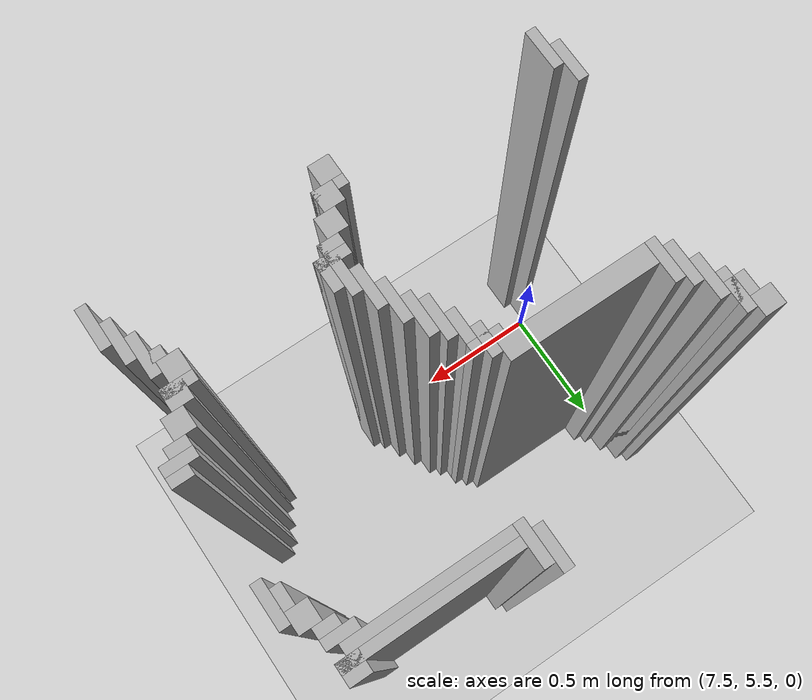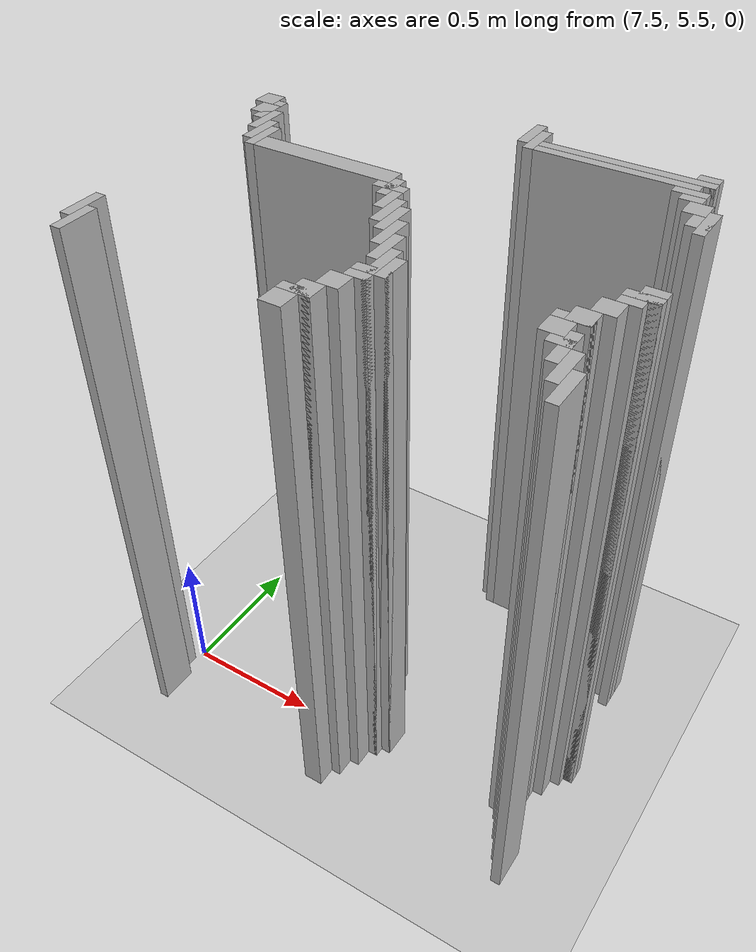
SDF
<sdf version="1.6">
 <world name="slam_world">
  <model name="ground_plane">
   <static>true</static>
   <link name="link">
    <collision name="collision">
     <geometry><plane><normal>0 0 1</normal><size>100 100</size></plane></geometry>
    </collision>
    <visual name="visual">
     <geometry><plane><normal>0 0 1</normal><size>100 100</size></plane></geometry>
     <material>
      <ambient>0.8 0.8 0.8 1</ambient>
      <diffuse>0.8 0.8 0.8 1</diffuse>
      <specular>0.8 0.8 0.8 1</specular>
     </material>
    </visual>
   </link>
  </model>
  <model name="wall_3631">
   <static>true</static>
   <pose>8.30046403712297 6.473317865429234 1.0 0 0 0</pose>
   <link name="link">
    <collision name="collision">
     <geometry><box><size>0.03480278422273782 0.13921113689095127 2.0</size></box></geometry>
    </collision>
    <visual name="visual">
     <geometry><box><size>0.03480278422273782 0.13921113689095127 2.0</size></box></geometry>
     <material><ambient>0.5 0.5 0.5 1</ambient><diffuse>0.7 0.7 0.7 1</diffuse></material>
    </visual>
   </link>
  </model>
  <model name="wall_3644">
   <static>true</static>
   <pose>8.335266821345707 6.438515081206496 1.0 0 0 0</pose>
   <link name="link">
    <collision name="collision">
     <geometry><box><size>0.03480278422273782 0.13921113689095127 2.0</size></box></geometry>
    </collision>
    <visual name="visual">
     <geometry><box><size>0.03480278422273782 0.13921113689095127 2.0</size></box></geometry>
     <material><ambient>0.5 0.5 0.5 1</ambient><diffuse>0.7 0.7 0.7 1</diffuse></material>
    </visual>
   </link>
  </model>
  <model name="wall_3654">
   <static>true</static>
   <pose>8.874709976798144 6.438515081206496 1.0 0 0 0</pose>
   <link name="link">
    <collision name="collision">
     <geometry><box><size>0.06960556844547564 0.06960556844547564 2.0</size></box></geometry>
    </collision>
    <visual name="visual">
     <geometry><box><size>0.06960556844547564 0.06960556844547564 2.0</size></box></geometry>
     <material><ambient>0.5 0.5 0.5 1</ambient><diffuse>0.7 0.7 0.7 1</diffuse></material>
    </visual>
   </link>
  </model>
  <model name="wall_3666">
   <static>true</static>
   <pose>8.631090487238978 6.421113689095128 1.0 0 0 0</pose>
   <link name="link">
    <collision name="collision">
     <geometry><box><size>0.5568445475638051 0.03480278422273782 2.0</size></box></geometry>
    </collision>
    <visual name="visual">
     <geometry><box><size>0.5568445475638051 0.03480278422273782 2.0</size></box></geometry>
     <material><ambient>0.5 0.5 0.5 1</ambient><diffuse>0.7 0.7 0.7 1</diffuse></material>
    </visual>
   </link>
  </model>
  <model name="wall_3674">
   <static>true</static>
   <pose>8.61368909512761 6.386310904872389 1.0 0 0 0</pose>
   <link name="link">
    <collision name="collision">
     <geometry><box><size>0.5220417633410672 0.03480278422273782 2.0</size></box></geometry>
    </collision>
    <visual name="visual">
     <geometry><box><size>0.5220417633410672 0.03480278422273782 2.0</size></box></geometry>
     <material><ambient>0.5 0.5 0.5 1</ambient><diffuse>0.7 0.7 0.7 1</diffuse></material>
    </visual>
   </link>
  </model>
  <model name="wall_3686">
   <static>true</static>
   <pose>8.857308584686775 6.351508120649652 1.0 0 0 0</pose>
   <link name="link">
    <collision name="collision">
     <geometry><box><size>0.10440835266821345 0.03480278422273782 2.0</size></box></geometry>
    </collision>
    <visual name="visual">
     <geometry><box><size>0.10440835266821345 0.03480278422273782 2.0</size></box></geometry>
     <material><ambient>0.5 0.5 0.5 1</ambient><diffuse>0.7 0.7 0.7 1</diffuse></material>
    </visual>
   </link>
  </model>
  <model name="wall_3696">
   <static>true</static>
   <pose>8.874709976798144 6.316705336426914 1.0 0 0 0</pose>
   <link name="link">
    <collision name="collision">
     <geometry><box><size>0.06960556844547564 0.03480278422273782 2.0</size></box></geometry>
    </collision>
    <visual name="visual">
     <geometry><box><size>0.06960556844547564 0.03480278422273782 2.0</size></box></geometry>
     <material><ambient>0.5 0.5 0.5 1</ambient><diffuse>0.7 0.7 0.7 1</diffuse></material>
    </visual>
   </link>
  </model>
  <model name="wall_3708">
   <static>true</static>
   <pose>7.447795823665893 6.2645011600928076 1.0 0 0 0</pose>
   <link name="link">
    <collision name="collision">
     <geometry><box><size>0.06960556844547564 0.06960556844547564 2.0</size></box></geometry>
    </collision>
    <visual name="visual">
     <geometry><box><size>0.06960556844547564 0.06960556844547564 2.0</size></box></geometry>
     <material><ambient>0.5 0.5 0.5 1</ambient><diffuse>0.7 0.7 0.7 1</diffuse></material>
    </visual>
   </link>
  </model>
  <model name="wall_3709">
   <static>true</static>
   <pose>8.909512761020881 6.2645011600928076 1.0 0 0 0</pose>
   <link name="link">
    <collision name="collision">
     <geometry><box><size>0.06960556844547564 0.06960556844547564 2.0</size></box></geometry>
    </collision>
    <visual name="visual">
     <geometry><box><size>0.06960556844547564 0.06960556844547564 2.0</size></box></geometry>
     <material><ambient>0.5 0.5 0.5 1</ambient><diffuse>0.7 0.7 0.7 1</diffuse></material>
    </visual>
   </link>
  </model>
  <model name="wall_3721">
   <static>true</static>
   <pose>7.5 6.194895591647332 1.0 0 0 0</pose>
   <link name="link">
    <collision name="collision">
     <geometry><box><size>0.03480278422273782 0.13921113689095127 2.0</size></box></geometry>
    </collision>
    <visual name="visual">
     <geometry><box><size>0.03480278422273782 0.13921113689095127 2.0</size></box></geometry>
     <material><ambient>0.5 0.5 0.5 1</ambient><diffuse>0.7 0.7 0.7 1</diffuse></material>
    </visual>
   </link>
  </model>
  <model name="wall_3722">
   <static>true</static>
   <pose>8.961716937354987 6.194895591647332 1.0 0 0 0</pose>
   <link name="link">
    <collision name="collision">
     <geometry><box><size>0.03480278422273782 0.13921113689095127 2.0</size></box></geometry>
    </collision>
    <visual name="visual">
     <geometry><box><size>0.03480278422273782 0.13921113689095127 2.0</size></box></geometry>
     <material><ambient>0.5 0.5 0.5 1</ambient><diffuse>0.7 0.7 0.7 1</diffuse></material>
    </visual>
   </link>
  </model>
  <model name="wall_3734">
   <static>true</static>
   <pose>7.48259860788863 6.194895591647332 1.0 0 0 0</pose>
   <link name="link">
    <collision name="collision">
     <geometry><box><size>0.06960556844547564 0.06960556844547564 2.0</size></box></geometry>
    </collision>
    <visual name="visual">
     <geometry><box><size>0.06960556844547564 0.06960556844547564 2.0</size></box></geometry>
     <material><ambient>0.5 0.5 0.5 1</ambient><diffuse>0.7 0.7 0.7 1</diffuse></material>
    </visual>
   </link>
  </model>
  <model name="wall_3735">
   <static>true</static>
   <pose>8.944315545243619 6.194895591647332 1.0 0 0 0</pose>
   <link name="link">
    <collision name="collision">
     <geometry><box><size>0.06960556844547564 0.06960556844547564 2.0</size></box></geometry>
    </collision>
    <visual name="visual">
     <geometry><box><size>0.06960556844547564 0.06960556844547564 2.0</size></box></geometry>
     <material><ambient>0.5 0.5 0.5 1</ambient><diffuse>0.7 0.7 0.7 1</diffuse></material>
    </visual>
   </link>
  </model>
  <model name="wall_3747">
   <static>true</static>
   <pose>7.534802784222737 6.125290023201856 1.0 0 0 0</pose>
   <link name="link">
    <collision name="collision">
     <geometry><box><size>0.03480278422273782 0.13921113689095127 2.0</size></box></geometry>
    </collision>
    <visual name="visual">
     <geometry><box><size>0.03480278422273782 0.13921113689095127 2.0</size></box></geometry>
     <material><ambient>0.5 0.5 0.5 1</ambient><diffuse>0.7 0.7 0.7 1</diffuse></material>
    </visual>
   </link>
  </model>
  <model name="wall_3764">
   <static>true</static>
   <pose>7.569605568445476 6.05568445475638 1.0 0 0 0</pose>
   <link name="link">
    <collision name="collision">
     <geometry><box><size>0.03480278422273782 0.13921113689095127 2.0</size></box></geometry>
    </collision>
    <visual name="visual">
     <geometry><box><size>0.03480278422273782 0.13921113689095127 2.0</size></box></geometry>
     <material><ambient>0.5 0.5 0.5 1</ambient><diffuse>0.7 0.7 0.7 1</diffuse></material>
    </visual>
   </link>
  </model>
  <model name="wall_3777">
   <static>true</static>
   <pose>7.604408352668213 6.020881670533642 1.0 0 0 0</pose>
   <link name="link">
    <collision name="collision">
     <geometry><box><size>0.03480278422273782 0.13921113689095127 2.0</size></box></geometry>
    </collision>
    <visual name="visual">
     <geometry><box><size>0.03480278422273782 0.13921113689095127 2.0</size></box></geometry>
     <material><ambient>0.5 0.5 0.5 1</ambient><diffuse>0.7 0.7 0.7 1</diffuse></material>
    </visual>
   </link>
  </model>
  <model name="wall_3793">
   <static>true</static>
   <pose>7.865429234338746 5.986078886310905 1.0 0 0 0</pose>
   <link name="link">
    <collision name="collision">
     <geometry><box><size>0.4872389791183295 0.06960556844547564 2.0</size></box></geometry>
    </collision>
    <visual name="visual">
     <geometry><box><size>0.4872389791183295 0.06960556844547564 2.0</size></box></geometry>
     <material><ambient>0.5 0.5 0.5 1</ambient><diffuse>0.7 0.7 0.7 1</diffuse></material>
    </visual>
   </link>
  </model>
  <model name="wall_3804">
   <static>true</static>
   <pose>8.12645011600928 5.933874709976798 1.0 0 0 0</pose>
   <link name="link">
    <collision name="collision">
     <geometry><box><size>0.03480278422273782 0.10440835266821345 2.0</size></box></geometry>
    </collision>
    <visual name="visual">
     <geometry><box><size>0.03480278422273782 0.10440835266821345 2.0</size></box></geometry>
     <material><ambient>0.5 0.5 0.5 1</ambient><diffuse>0.7 0.7 0.7 1</diffuse></material>
    </visual>
   </link>
  </model>
  <model name="wall_3817">
   <static>true</static>
   <pose>8.12645011600928 5.933874709976798 1.0 0 0 0</pose>
   <link name="link">
    <collision name="collision">
     <geometry><box><size>0.10440835266821345 0.03480278422273782 2.0</size></box></geometry>
    </collision>
    <visual name="visual">
     <geometry><box><size>0.10440835266821345 0.03480278422273782 2.0</size></box></geometry>
     <material><ambient>0.5 0.5 0.5 1</ambient><diffuse>0.7 0.7 0.7 1</diffuse></material>
    </visual>
   </link>
  </model>
  <model name="wall_3831">
   <static>true</static>
   <pose>8.161252900232018 5.864269141531322 1.0 0 0 0</pose>
   <link name="link">
    <collision name="collision">
     <geometry><box><size>0.03480278422273782 0.10440835266821345 2.0</size></box></geometry>
    </collision>
    <visual name="visual">
     <geometry><box><size>0.03480278422273782 0.10440835266821345 2.0</size></box></geometry>
     <material><ambient>0.5 0.5 0.5 1</ambient><diffuse>0.7 0.7 0.7 1</diffuse></material>
    </visual>
   </link>
  </model>
  <model name="wall_3846">
   <static>true</static>
   <pose>8.196055684454755 5.812064965197216 1.0 0 0 0</pose>
   <link name="link">
    <collision name="collision">
     <geometry><box><size>0.03480278422273782 0.13921113689095127 2.0</size></box></geometry>
    </collision>
    <visual name="visual">
     <geometry><box><size>0.03480278422273782 0.13921113689095127 2.0</size></box></geometry>
     <material><ambient>0.5 0.5 0.5 1</ambient><diffuse>0.7 0.7 0.7 1</diffuse></material>
    </visual>
   </link>
  </model>
  <model name="wall_3862">
   <static>true</static>
   <pose>8.230858468677495 5.7772621809744775 1.0 0 0 0</pose>
   <link name="link">
    <collision name="collision">
     <geometry><box><size>0.03480278422273782 0.13921113689095127 2.0</size></box></geometry>
    </collision>
    <visual name="visual">
     <geometry><box><size>0.03480278422273782 0.13921113689095127 2.0</size></box></geometry>
     <material><ambient>0.5 0.5 0.5 1</ambient><diffuse>0.7 0.7 0.7 1</diffuse></material>
    </visual>
   </link>
  </model>
  <model name="wall_3878">
   <static>true</static>
   <pose>8.979118329466356 5.7772621809744775 1.0 0 0 0</pose>
   <link name="link">
    <collision name="collision">
     <geometry><box><size>0.06960556844547564 0.06960556844547564 2.0</size></box></geometry>
    </collision>
    <visual name="visual">
     <geometry><box><size>0.06960556844547564 0.06960556844547564 2.0</size></box></geometry>
     <material><ambient>0.5 0.5 0.5 1</ambient><diffuse>0.7 0.7 0.7 1</diffuse></material>
    </visual>
   </link>
  </model>
  <model name="wall_3891">
   <static>true</static>
   <pose>8.265661252900232 5.707656612529002 1.0 0 0 0</pose>
   <link name="link">
    <collision name="collision">
     <geometry><box><size>0.03480278422273782 0.13921113689095127 2.0</size></box></geometry>
    </collision>
    <visual name="visual">
     <geometry><box><size>0.03480278422273782 0.13921113689095127 2.0</size></box></geometry>
     <material><ambient>0.5 0.5 0.5 1</ambient><diffuse>0.7 0.7 0.7 1</diffuse></material>
    </visual>
   </link>
  </model>
  <model name="wall_3892">
   <static>true</static>
   <pose>8.961716937354987 5.759860788863109 1.0 0 0 0</pose>
   <link name="link">
    <collision name="collision">
     <geometry><box><size>0.10440835266821345 0.03480278422273782 2.0</size></box></geometry>
    </collision>
    <visual name="visual">
     <geometry><box><size>0.10440835266821345 0.03480278422273782 2.0</size></box></geometry>
     <material><ambient>0.5 0.5 0.5 1</ambient><diffuse>0.7 0.7 0.7 1</diffuse></material>
    </visual>
   </link>
  </model>
  <model name="wall_3903">
   <static>true</static>
   <pose>8.944315545243619 5.725058004640371 1.0 0 0 0</pose>
   <link name="link">
    <collision name="collision">
     <geometry><box><size>0.06960556844547564 0.03480278422273782 2.0</size></box></geometry>
    </collision>
    <visual name="visual">
     <geometry><box><size>0.06960556844547564 0.03480278422273782 2.0</size></box></geometry>
     <material><ambient>0.5 0.5 0.5 1</ambient><diffuse>0.7 0.7 0.7 1</diffuse></material>
    </visual>
   </link>
  </model>
  <model name="wall_3915">
   <static>true</static>
   <pose>8.30046403712297 5.638051044083526 1.0 0 0 0</pose>
   <link name="link">
    <collision name="collision">
     <geometry><box><size>0.03480278422273782 0.13921113689095127 2.0</size></box></geometry>
    </collision>
    <visual name="visual">
     <geometry><box><size>0.03480278422273782 0.13921113689095127 2.0</size></box></geometry>
     <material><ambient>0.5 0.5 0.5 1</ambient><diffuse>0.7 0.7 0.7 1</diffuse></material>
    </visual>
   </link>
  </model>
  <model name="wall_3916">
   <static>true</static>
   <pose>8.909512761020881 5.672853828306264 1.0 0 0 0</pose>
   <link name="link">
    <collision name="collision">
     <geometry><box><size>0.06960556844547564 0.06960556844547564 2.0</size></box></geometry>
    </collision>
    <visual name="visual">
     <geometry><box><size>0.06960556844547564 0.06960556844547564 2.0</size></box></geometry>
     <material><ambient>0.5 0.5 0.5 1</ambient><diffuse>0.7 0.7 0.7 1</diffuse></material>
    </visual>
   </link>
  </model>
  <model name="wall_3931">
   <static>true</static>
   <pose>8.335266821345707 5.551044083526682 1.0 0 0 0</pose>
   <link name="link">
    <collision name="collision">
     <geometry><box><size>0.03480278422273782 0.17401392111368907 2.0</size></box></geometry>
    </collision>
    <visual name="visual">
     <geometry><box><size>0.03480278422273782 0.17401392111368907 2.0</size></box></geometry>
     <material><ambient>0.5 0.5 0.5 1</ambient><diffuse>0.7 0.7 0.7 1</diffuse></material>
    </visual>
   </link>
  </model>
  <model name="wall_3932">
   <static>true</static>
   <pose>8.874709976798144 5.603248259860789 1.0 0 0 0</pose>
   <link name="link">
    <collision name="collision">
     <geometry><box><size>0.06960556844547564 0.06960556844547564 2.0</size></box></geometry>
    </collision>
    <visual name="visual">
     <geometry><box><size>0.06960556844547564 0.06960556844547564 2.0</size></box></geometry>
     <material><ambient>0.5 0.5 0.5 1</ambient><diffuse>0.7 0.7 0.7 1</diffuse></material>
    </visual>
   </link>
  </model>
  <model name="wall_3947">
   <static>true</static>
   <pose>8.370069605568444 5.551044083526682 1.0 0 0 0</pose>
   <link name="link">
    <collision name="collision">
     <geometry><box><size>0.03480278422273782 0.10440835266821345 2.0</size></box></geometry>
    </collision>
    <visual name="visual">
     <geometry><box><size>0.03480278422273782 0.10440835266821345 2.0</size></box></geometry>
     <material><ambient>0.5 0.5 0.5 1</ambient><diffuse>0.7 0.7 0.7 1</diffuse></material>
    </visual>
   </link>
  </model>
  <model name="wall_3948">
   <static>true</static>
   <pose>8.857308584686775 5.58584686774942 1.0 0 0 0</pose>
   <link name="link">
    <collision name="collision">
     <geometry><box><size>0.10440835266821345 0.03480278422273782 2.0</size></box></geometry>
    </collision>
    <visual name="visual">
     <geometry><box><size>0.10440835266821345 0.03480278422273782 2.0</size></box></geometry>
     <material><ambient>0.5 0.5 0.5 1</ambient><diffuse>0.7 0.7 0.7 1</diffuse></material>
    </visual>
   </link>
  </model>
  <model name="wall_3962">
   <static>true</static>
   <pose>8.839907192575406 5.533642691415313 1.0 0 0 0</pose>
   <link name="link">
    <collision name="collision">
     <geometry><box><size>0.06960556844547564 0.06960556844547564 2.0</size></box></geometry>
    </collision>
    <visual name="visual">
     <geometry><box><size>0.06960556844547564 0.06960556844547564 2.0</size></box></geometry>
     <material><ambient>0.5 0.5 0.5 1</ambient><diffuse>0.7 0.7 0.7 1</diffuse></material>
    </visual>
   </link>
  </model>
  <model name="wall_3976">
   <static>true</static>
   <pose>8.335266821345707 5.516241299303944 1.0 0 0 0</pose>
   <link name="link">
    <collision name="collision">
     <geometry><box><size>0.10440835266821345 0.03480278422273782 2.0</size></box></geometry>
    </collision>
    <visual name="visual">
     <geometry><box><size>0.10440835266821345 0.03480278422273782 2.0</size></box></geometry>
     <material><ambient>0.5 0.5 0.5 1</ambient><diffuse>0.7 0.7 0.7 1</diffuse></material>
    </visual>
   </link>
  </model>
  <model name="wall_3977">
   <static>true</static>
   <pose>8.892111368909513 5.464037122969837 1.0 0 0 0</pose>
   <link name="link">
    <collision name="collision">
     <geometry><box><size>0.03480278422273782 0.13921113689095127 2.0</size></box></geometry>
    </collision>
    <visual name="visual">
     <geometry><box><size>0.03480278422273782 0.13921113689095127 2.0</size></box></geometry>
     <material><ambient>0.5 0.5 0.5 1</ambient><diffuse>0.7 0.7 0.7 1</diffuse></material>
    </visual>
   </link>
  </model>
  <model name="wall_3991">
   <static>true</static>
   <pose>8.317865429234338 5.481438515081206 1.0 0 0 0</pose>
   <link name="link">
    <collision name="collision">
     <geometry><box><size>0.06960556844547564 0.03480278422273782 2.0</size></box></geometry>
    </collision>
    <visual name="visual">
     <geometry><box><size>0.06960556844547564 0.03480278422273782 2.0</size></box></geometry>
     <material><ambient>0.5 0.5 0.5 1</ambient><diffuse>0.7 0.7 0.7 1</diffuse></material>
    </visual>
   </link>
  </model>
  <model name="wall_3992">
   <static>true</static>
   <pose>8.874709976798144 5.481438515081206 1.0 0 0 0</pose>
   <link name="link">
    <collision name="collision">
     <geometry><box><size>0.06960556844547564 0.03480278422273782 2.0</size></box></geometry>
    </collision>
    <visual name="visual">
     <geometry><box><size>0.06960556844547564 0.03480278422273782 2.0</size></box></geometry>
     <material><ambient>0.5 0.5 0.5 1</ambient><diffuse>0.7 0.7 0.7 1</diffuse></material>
    </visual>
   </link>
  </model>
  <model name="wall_4003">
   <static>true</static>
   <pose>7.465197215777262 5.3944315545243615 1.0 0 0 0</pose>
   <link name="link">
    <collision name="collision">
     <geometry><box><size>0.03480278422273782 0.13921113689095127 2.0</size></box></geometry>
    </collision>
    <visual name="visual">
     <geometry><box><size>0.03480278422273782 0.13921113689095127 2.0</size></box></geometry>
     <material><ambient>0.5 0.5 0.5 1</ambient><diffuse>0.7 0.7 0.7 1</diffuse></material>
    </visual>
   </link>
  </model>
  <model name="wall_4004">
   <static>true</static>
   <pose>8.2830626450116 5.4292343387471 1.0 0 0 0</pose>
   <link name="link">
    <collision name="collision">
     <geometry><box><size>0.06960556844547564 0.06960556844547564 2.0</size></box></geometry>
    </collision>
    <visual name="visual">
     <geometry><box><size>0.06960556844547564 0.06960556844547564 2.0</size></box></geometry>
     <material><ambient>0.5 0.5 0.5 1</ambient><diffuse>0.7 0.7 0.7 1</diffuse></material>
    </visual>
   </link>
  </model>
  <model name="wall_4005">
   <static>true</static>
   <pose>8.92691415313225 5.3944315545243615 1.0 0 0 0</pose>
   <link name="link">
    <collision name="collision">
     <geometry><box><size>0.03480278422273782 0.13921113689095127 2.0</size></box></geometry>
    </collision>
    <visual name="visual">
     <geometry><box><size>0.03480278422273782 0.13921113689095127 2.0</size></box></geometry>
     <material><ambient>0.5 0.5 0.5 1</ambient><diffuse>0.7 0.7 0.7 1</diffuse></material>
    </visual>
   </link>
  </model>
  <model name="wall_4016">
   <static>true</static>
   <pose>7.5 5.324825986078886 1.0 0 0 0</pose>
   <link name="link">
    <collision name="collision">
     <geometry><box><size>0.03480278422273782 0.13921113689095127 2.0</size></box></geometry>
    </collision>
    <visual name="visual">
     <geometry><box><size>0.03480278422273782 0.13921113689095127 2.0</size></box></geometry>
     <material><ambient>0.5 0.5 0.5 1</ambient><diffuse>0.7 0.7 0.7 1</diffuse></material>
    </visual>
   </link>
  </model>
  <model name="wall_4017">
   <static>true</static>
   <pose>8.248259860788863 5.359628770301624 1.0 0 0 0</pose>
   <link name="link">
    <collision name="collision">
     <geometry><box><size>0.06960556844547564 0.06960556844547564 2.0</size></box></geometry>
    </collision>
    <visual name="visual">
     <geometry><box><size>0.06960556844547564 0.06960556844547564 2.0</size></box></geometry>
     <material><ambient>0.5 0.5 0.5 1</ambient><diffuse>0.7 0.7 0.7 1</diffuse></material>
    </visual>
   </link>
  </model>
  <model name="wall_4018">
   <static>true</static>
   <pose>8.961716937354987 5.324825986078886 1.0 0 0 0</pose>
   <link name="link">
    <collision name="collision">
     <geometry><box><size>0.03480278422273782 0.13921113689095127 2.0</size></box></geometry>
    </collision>
    <visual name="visual">
     <geometry><box><size>0.03480278422273782 0.13921113689095127 2.0</size></box></geometry>
     <material><ambient>0.5 0.5 0.5 1</ambient><diffuse>0.7 0.7 0.7 1</diffuse></material>
    </visual>
   </link>
  </model>
  <model name="wall_4030">
   <static>true</static>
   <pose>8.230858468677495 5.342227378190255 1.0 0 0 0</pose>
   <link name="link">
    <collision name="collision">
     <geometry><box><size>0.10440835266821345 0.03480278422273782 2.0</size></box></geometry>
    </collision>
    <visual name="visual">
     <geometry><box><size>0.10440835266821345 0.03480278422273782 2.0</size></box></geometry>
     <material><ambient>0.5 0.5 0.5 1</ambient><diffuse>0.7 0.7 0.7 1</diffuse></material>
    </visual>
   </link>
  </model>
  <model name="wall_4039">
   <static>true</static>
   <pose>8.213457076566124 5.290023201856148 1.0 0 0 0</pose>
   <link name="link">
    <collision name="collision">
     <geometry><box><size>0.06960556844547564 0.06960556844547564 2.0</size></box></geometry>
    </collision>
    <visual name="visual">
     <geometry><box><size>0.06960556844547564 0.06960556844547564 2.0</size></box></geometry>
     <material><ambient>0.5 0.5 0.5 1</ambient><diffuse>0.7 0.7 0.7 1</diffuse></material>
    </visual>
   </link>
  </model>
 </world>
</sdf>
